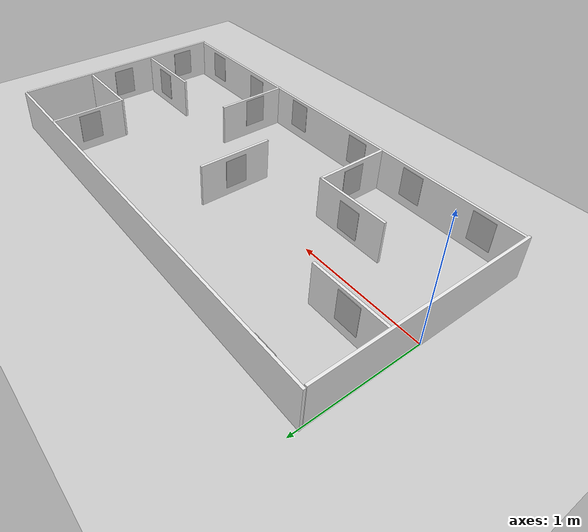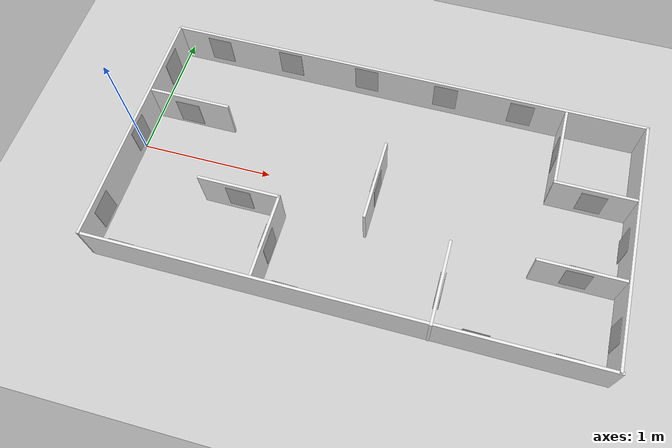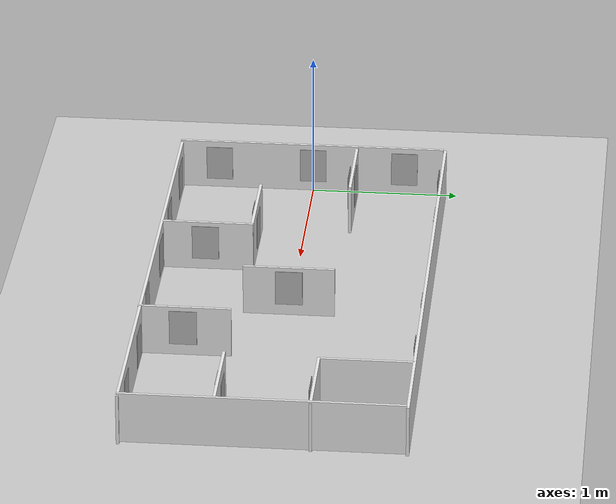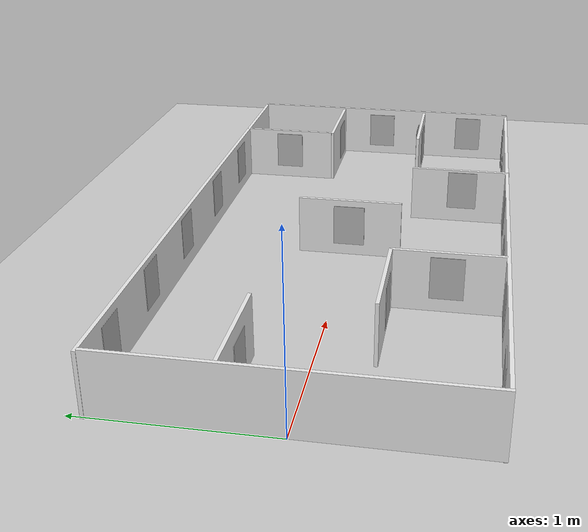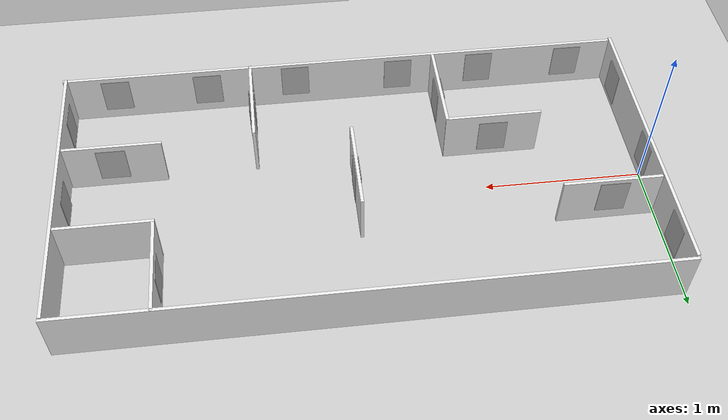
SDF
<sdf version="1.6">
 <world name="default">
  <light name="sun" type="directional">
   <pose>0 0 10 0 -0 0</pose>
   <diffuse>0.8 0.8 0.8 1</diffuse>
   <specular>0.2 0.2 0.2 1</specular>
   <attenuation>
    <range>1000</range>
    <constant>0.9</constant>
    <linear>0.01</linear>
    <quadratic>0.001</quadratic>
   </attenuation>
   <direction>-0.5 0.1 -0.9</direction>
  </light>
  <model name="ground_plane">
   <static>1</static>
   <link name="link">
    <collision name="collision">
     <geometry><plane><normal>0 0 1</normal><size>100 100</size></plane></geometry>
     <surface><friction><ode><mu>100</mu><mu2>50</mu2></ode></friction></surface>
    </collision>
    <visual name="visual">
     <cast_shadows>0</cast_shadows>
     <geometry><plane><normal>0 0 1</normal><size>100 100</size></plane></geometry>
     <material>
      <script><uri>file://media/materials/scripts/gazebo.material</uri><name>Gazebo/Grey</name></script>
     </material>
    </visual>
   </link>
  </model>
  <physics name="default_physics" default="0" type="ode">
   <real_time_update_rate>1000</real_time_update_rate>
   <max_step_size>0.001</max_step_size>
   <real_time_factor>1</real_time_factor>
   <ode>
    <solver>
     <type>quick</type>
     <iters>150</iters>
     <precon_iters>0</precon_iters>
     <sor>1.4</sor>
     <use_dynamic_moi_rescaling>1</use_dynamic_moi_rescaling>
    </solver>
    <constraints>
     <cfm>1e-05</cfm>
     <erp>0.2</erp>
     <contact_max_correcting_vel>2000</contact_max_correcting_vel>
     <contact_surface_layer>0.01</contact_surface_layer>
    </constraints>
   </ode>
  </physics>
  <gravity>0 0 -9.8</gravity>
  <magnetic_field>6e-06 2.3e-05 -4.2e-05</magnetic_field>
  <atmosphere type="adiabatic"/>
  <scene><ambient>0.4 0.4 0.4 1</ambient><background>0.7 0.7 0.7 1</background><shadows>1</shadows></scene>
  <spherical_coordinates>
   <surface_model>EARTH_WGS84</surface_model>
   <latitude_deg>0</latitude_deg>
   <longitude_deg>0</longitude_deg>
   <elevation>0</elevation>
   <heading_deg>0</heading_deg>
  </spherical_coordinates>
  <model name="sign_right1">
   <static>1</static>
   <link name="link">
    <pose>0 0 1.4 0 -0 0</pose>
    <visual name="visual">
     <cast_shadows>0</cast_shadows>
     <geometry><box><size>0.003668 0.181404 0.2404</size></box></geometry>
     <material>
      <script>
       <uri>model://sign_right1/materials/scripts</uri>
       <uri>model://sign_right1/materials/textures</uri>
       <name>right1</name>
      </script>
     </material>
    </visual>
   </link>
   <pose>0.298208 0.274612 -1.21562 0 -0 1.57</pose>
  </model>
  <model name="sign_left2_0">
   <static>1</static>
   <link name="link">
    <pose>0 0 1.4 0 -0 0</pose>
    <visual name="visual">
     <cast_shadows>0</cast_shadows>
     <geometry><box><size>0.003668 0.181404 0.2404</size></box></geometry>
     <material>
      <script>
       <uri>model://sign_left2/materials/scripts</uri>
       <uri>model://sign_left2/materials/textures</uri>
       <name>left2</name>
      </script>
     </material>
    </visual>
   </link>
   <pose>2.42433 -0.639391 -1.18903 0 -0 0</pose>
  </model>
  <model name="sign_target">
   <static>1</static>
   <link name="link">
    <pose>0 0 1.4 0 -0 0</pose>
    <visual name="visual">
     <cast_shadows>0</cast_shadows>
     <geometry><box><size>0.003668 0.181404 0.2404</size></box></geometry>
     <material>
      <script>
       <uri>model://sign_target/materials/scripts</uri>
       <uri>model://sign_target/materials/textures</uri>
       <name>target</name>
      </script>
     </material>
    </visual>
   </link>
   <pose>3.6084 -0.639481 -1.19831 0 -0 0</pose>
  </model>
  <model name="sign_left3_0_clone">
   <static>1</static>
   <link name="link">
    <pose>0 0 1.4 0 -0 0</pose>
    <visual name="visual">
     <cast_shadows>0</cast_shadows>
     <geometry><box><size>0.003668 0.181404 0.2404</size></box></geometry>
     <material>
      <script>
       <uri>model://sign_left3/materials/scripts</uri>
       <uri>model://sign_left3/materials/textures</uri>
       <name>left3</name>
      </script>
     </material>
    </visual>
   </link>
   <pose>1.81149 0.003008 -1.21134 0 -0 0</pose>
  </model>
  <model name="sign_left2_1">
   <static>1</static>
   <link name="link">
    <pose>0 0 1.4 0 -0 0</pose>
    <visual name="visual">
     <cast_shadows>0</cast_shadows>
     <geometry><box><size>0.003668 0.181404 0.2404</size></box></geometry>
     <material>
      <script>
       <uri>model://sign_left2/materials/scripts</uri>
       <uri>model://sign_left2/materials/textures</uri>
       <name>left2</name>
      </script>
     </material>
    </visual>
   </link>
   <pose>0.919228 -0.292738 -1.2369 0 -0 1.55336</pose>
  </model>
  <light name="user_point_light_0" type="point">
   <pose>-3.4255 -0.058943 1 0 -0 0</pose>
   <diffuse>0.5 0.5 0.5 1</diffuse>
   <specular>0.1 0.1 0.1 1</specular>
   <attenuation>
    <range>20</range>
    <constant>0.5</constant>
    <linear>0.01</linear>
    <quadratic>0.001</quadratic>
   </attenuation>
   <cast_shadows>0</cast_shadows>
   <direction>0 0 -1</direction>
  </light>
  <audio><device>default</device></audio>
  <model name="sign_do_not_enter_0">
   <static>1</static>
   <link name="link">
    <pose>0 0 1.4 0 -0 0</pose>
    <visual name="visual">
     <cast_shadows>0</cast_shadows>
     <geometry><box><size>0.003668 0.181404 0.2404</size></box></geometry>
     <material>
      <script>
       <uri>model://sign_do_not_enter/materials/scripts</uri>
       <uri>model://sign_do_not_enter/materials/textures</uri>
       <name>do_not_enter</name>
      </script>
     </material>
    </visual>
   </link>
   <pose>0.014991 0 -1.2 0 -0 0</pose>
  </model>
  <model name="sign_stop">
   <static>1</static>
   <link name="link">
    <pose>0 0 1.4 0 -0 0</pose>
    <visual name="visual">
     <cast_shadows>0</cast_shadows>
     <geometry><box><size>0.003668 0.181404 0.2404</size></box></geometry>
     <material>
      <script>
       <uri>model://sign_stop/materials/scripts</uri>
       <uri>model://sign_stop/materials/textures</uri>
       <name>stop</name>
      </script>
     </material>
    </visual>
   </link>
   <pose>0.017951 0.636179 -1.2 0 -0 0</pose>
  </model>
  <model name="sign_left2">
   <static>1</static>
   <link name="link">
    <pose>0 0 1.4 0 -0 0</pose>
    <visual name="visual">
     <cast_shadows>0</cast_shadows>
     <geometry><box><size>0.003668 0.181404 0.2404</size></box></geometry>
     <material>
      <script>
       <uri>model://sign_left2/materials/scripts</uri>
       <uri>model://sign_left2/materials/textures</uri>
       <name>left2</name>
      </script>
     </material>
    </visual>
   </link>
   <pose>1.24192 -0.61953 -1.2 0 -0 0</pose>
  </model>
  <model name="sign_right1_0">
   <static>1</static>
   <link name="link">
    <pose>0 0 1.4 0 -0 0</pose>
    <visual name="visual">
     <cast_shadows>0</cast_shadows>
     <geometry><box><size>0.003668 0.181404 0.2404</size></box></geometry>
     <material>
      <script>
       <uri>model://sign_right1/materials/scripts</uri>
       <uri>model://sign_right1/materials/textures</uri>
       <name>right1</name>
      </script>
     </material>
    </visual>
   </link>
   <pose>1.84698 0.000934 -1.2 0 -0 0</pose>
  </model>
  <model name="sign_do_not_enter_1">
   <static>1</static>
   <link name="link">
    <pose>0 0 1.4 0 -0 0</pose>
    <visual name="visual">
     <cast_shadows>0</cast_shadows>
     <geometry><box><size>0.003668 0.181404 0.2404</size></box></geometry>
     <material>
      <script>
       <uri>model://sign_do_not_enter/materials/scripts</uri>
       <uri>model://sign_do_not_enter/materials/textures</uri>
       <name>do_not_enter</name>
      </script>
     </material>
    </visual>
   </link>
   <pose>2.4586 -0.633708 -1.2 0 -0 0</pose>
  </model>
  <model name="sign_right2">
   <static>1</static>
   <link name="link">
    <pose>0 0 1.4 0 -0 0</pose>
    <visual name="visual">
     <cast_shadows>0</cast_shadows>
     <geometry><box><size>0.003668 0.181404 0.2404</size></box></geometry>
     <material>
      <script>
       <uri>model://sign_right2/materials/scripts</uri>
       <uri>model://sign_right2/materials/textures</uri>
       <name>right2</name>
      </script>
     </material>
    </visual>
   </link>
   <pose>0.029393 -0.65087 -1.2 0 -0 0</pose>
  </model>
  <model name="sign_right1_1">
   <static>1</static>
   <link name="link">
    <pose>0 0 1.4 0 -0 0</pose>
    <visual name="visual">
     <cast_shadows>0</cast_shadows>
     <geometry><box><size>0.003668 0.181404 0.2404</size></box></geometry>
     <material>
      <script>
       <uri>model://sign_right1/materials/scripts</uri>
       <uri>model://sign_right1/materials/textures</uri>
       <name>right1</name>
      </script>
     </material>
    </visual>
   </link>
   <pose>1.19951 -0.605606 -1.2 0 -0 0</pose>
  </model>
  <model name="sign_right3">
   <static>1</static>
   <link name="link">
    <pose>0 0 1.4 0 -0 0</pose>
    <visual name="visual">
     <cast_shadows>0</cast_shadows>
     <geometry><box><size>0.003668 0.181404 0.2404</size></box></geometry>
     <material>
      <script>
       <uri>model://sign_right3/materials/scripts</uri>
       <uri>model://sign_right3/materials/textures</uri>
       <name>right3</name>
      </script>
     </material>
    </visual>
   </link>
   <pose>3.0323 0.613433 -1.2 0 -0 0</pose>
  </model>
  <model name="sign_left1">
   <static>1</static>
   <link name="link">
    <pose>0 0 1.4 0 -0 0</pose>
    <visual name="visual">
     <cast_shadows>0</cast_shadows>
     <geometry><box><size>0.003668 0.181404 0.2404</size></box></geometry>
     <material>
      <script>
       <uri>model://sign_left1/materials/scripts</uri>
       <uri>model://sign_left1/materials/textures</uri>
       <name>left1</name>
      </script>
     </material>
    </visual>
   </link>
   <pose>3.59571 0.007617 -1.2 0 -0 0</pose>
  </model>
  <model name="sign_right2_0">
   <static>1</static>
   <link name="link">
    <pose>0 0 1.4 0 -0 0</pose>
    <visual name="visual">
     <cast_shadows>0</cast_shadows>
     <geometry><box><size>0.003668 0.181404 0.2404</size></box></geometry>
     <material>
      <script>
       <uri>model://sign_right2/materials/scripts</uri>
       <uri>model://sign_right2/materials/textures</uri>
       <name>right2</name>
      </script>
     </material>
    </visual>
   </link>
   <pose>0.902059 -0.899561 -1.2 0 0 -1.58148</pose>
  </model>
  <model name="sign_left1_0">
   <static>1</static>
   <link name="link">
    <pose>0 0 1.4 0 -0 0</pose>
    <visual name="visual">
     <cast_shadows>0</cast_shadows>
     <geometry><box><size>0.003668 0.181404 0.2404</size></box></geometry>
     <material>
      <script>
       <uri>model://sign_left1/materials/scripts</uri>
       <uri>model://sign_left1/materials/textures</uri>
       <name>left1</name>
      </script>
     </material>
    </visual>
   </link>
   <pose>2.14464 -0.904127 -1.2 0 0 -1.58148</pose>
  </model>
  <model name="sign_left2_2">
   <static>1</static>
   <link name="link">
    <pose>0 0 1.4 0 -0 0</pose>
    <visual name="visual">
     <cast_shadows>0</cast_shadows>
     <geometry><box><size>0.003668 0.181404 0.2404</size></box></geometry>
     <material>
      <script>
       <uri>model://sign_left2/materials/scripts</uri>
       <uri>model://sign_left2/materials/textures</uri>
       <name>left2</name>
      </script>
     </material>
    </visual>
   </link>
   <pose>2.72793 -0.888106 -1.2 0 0 -1.58148</pose>
  </model>
  <model name="sign_left3">
   <static>1</static>
   <link name="link">
    <pose>0 0 1.4 0 -0 0</pose>
    <visual name="visual">
     <cast_shadows>0</cast_shadows>
     <geometry><box><size>0.003668 0.181404 0.2404</size></box></geometry>
     <material>
      <script>
       <uri>model://sign_left3/materials/scripts</uri>
       <uri>model://sign_left3/materials/textures</uri>
       <name>left3</name>
      </script>
     </material>
    </visual>
   </link>
   <pose>3.32782 -0.894592 -1.2 0 0 -1.58148</pose>
  </model>
  <model name="sign_right1_2">
   <static>1</static>
   <link name="link">
    <pose>0 0 1.4 0 -0 0</pose>
    <visual name="visual">
     <cast_shadows>0</cast_shadows>
     <geometry><box><size>0.003668 0.181404 0.2404</size></box></geometry>
     <material>
      <script>
       <uri>model://sign_right1/materials/scripts</uri>
       <uri>model://sign_right1/materials/textures</uri>
       <name>right1</name>
      </script>
     </material>
    </visual>
   </link>
   <pose>3.32829 -0.281957 -1.2 0 0 -1.58148</pose>
  </model>
  <model name="sign_left3_1">
   <static>1</static>
   <link name="link">
    <pose>0 0 1.4 0 -0 0</pose>
    <visual name="visual">
     <cast_shadows>0</cast_shadows>
     <geometry><box><size>0.003668 0.181404 0.2404</size></box></geometry>
     <material>
      <script>
       <uri>model://sign_left3/materials/scripts</uri>
       <uri>model://sign_left3/materials/textures</uri>
       <name>left3</name>
      </script>
     </material>
    </visual>
   </link>
   <pose>1.45296 -0.894099 -1.2 0 0 -1.58148</pose>
  </model>
  <model name="sign_do_not_enter_2">
   <static>1</static>
   <link name="link">
    <pose>0 0 1.4 0 -0 0</pose>
    <visual name="visual">
     <cast_shadows>0</cast_shadows>
     <geometry><box><size>0.003668 0.181404 0.2404</size></box></geometry>
     <material>
      <script>
       <uri>model://sign_do_not_enter/materials/scripts</uri>
       <uri>model://sign_do_not_enter/materials/textures</uri>
       <name>do_not_enter</name>
      </script>
     </material>
    </visual>
   </link>
   <pose>0.295552 -0.894623 -1.2 0 0 -1.58148</pose>
  </model>
  <model name="sign_left3_2">
   <static>1</static>
   <link name="link">
    <pose>0 0 1.4 0 -0 0</pose>
    <visual name="visual">
     <cast_shadows>0</cast_shadows>
     <geometry><box><size>0.003668 0.181404 0.2404</size></box></geometry>
     <material>
      <script>
       <uri>model://sign_left3/materials/scripts</uri>
       <uri>model://sign_left3/materials/textures</uri>
       <name>left3</name>
      </script>
     </material>
    </visual>
   </link>
   <pose>0.300716 0.31857 -1.2 0 0 -1.58148</pose>
  </model>
  <model name="sign_right1_3">
   <static>1</static>
   <link name="link">
    <pose>0 0 1.4 0 -0 0</pose>
    <visual name="visual">
     <cast_shadows>0</cast_shadows>
     <geometry><box><size>0.003668 0.181404 0.2404</size></box></geometry>
     <material>
      <script>
       <uri>model://sign_right1/materials/scripts</uri>
       <uri>model://sign_right1/materials/textures</uri>
       <name>right1</name>
      </script>
     </material>
    </visual>
   </link>
   <pose>0.903865 0.903135 -1.2 0 -0 1.57</pose>
  </model>
  <model name="sign_right2_1">
   <static>1</static>
   <link name="link">
    <pose>0 0 1.4 0 -0 0</pose>
    <visual name="visual">
     <cast_shadows>0</cast_shadows>
     <geometry><box><size>0.003668 0.181404 0.2404</size></box></geometry>
     <material>
      <script>
       <uri>model://sign_right2/materials/scripts</uri>
       <uri>model://sign_right2/materials/textures</uri>
       <name>right2</name>
      </script>
     </material>
    </visual>
   </link>
   <pose>1.51809 0.90683 -1.2 0 -0 1.57</pose>
  </model>
  <model name="sign_right3_0">
   <static>1</static>
   <link name="link">
    <pose>0 0 1.4 0 -0 0</pose>
    <visual name="visual">
     <cast_shadows>0</cast_shadows>
     <geometry><box><size>0.003668 0.181404 0.2404</size></box></geometry>
     <material>
      <script>
       <uri>model://sign_right3/materials/scripts</uri>
       <uri>model://sign_right3/materials/textures</uri>
       <name>right3</name>
      </script>
     </material>
    </visual>
   </link>
   <pose>2.14189 0.901476 -1.2 0 -0 1.57</pose>
  </model>
  <model name="sign_do_not_enter_3">
   <static>1</static>
   <link name="link">
    <pose>0 0 1.4 0 -0 0</pose>
    <visual name="visual">
     <cast_shadows>0</cast_shadows>
     <geometry><box><size>0.003668 0.181404 0.2404</size></box></geometry>
     <material>
      <script>
       <uri>model://sign_do_not_enter/materials/scripts</uri>
       <uri>model://sign_do_not_enter/materials/textures</uri>
       <name>do_not_enter</name>
      </script>
     </material>
    </visual>
   </link>
   <pose>2.72711 0.896709 -1.2 0 -0 1.57</pose>
  </model>
  <model name="sign_right2_3">
   <static>1</static>
   <link name="link">
    <pose>0 0 1.4 0 -0 0</pose>
    <visual name="visual">
     <cast_shadows>0</cast_shadows>
     <geometry><box><size>0.003668 0.181404 0.2404</size></box></geometry>
     <material>
      <script>
       <uri>model://sign_right2/materials/scripts</uri>
       <uri>model://sign_right2/materials/textures</uri>
       <name>right2</name>
      </script>
     </material>
    </visual>
   </link>
   <pose>3.3118 -0.321314 -1.2 0 -0 1.57</pose>
  </model>
  <model name="sign_left1_1">
   <static>1</static>
   <link name="link">
    <pose>0 0 1.4 0 -0 0</pose>
    <visual name="visual">
     <cast_shadows>0</cast_shadows>
     <geometry><box><size>0.003668 0.181404 0.2404</size></box></geometry>
     <material>
      <script>
       <uri>model://sign_left1/materials/scripts</uri>
       <uri>model://sign_left1/materials/textures</uri>
       <name>left1</name>
      </script>
     </material>
    </visual>
   </link>
   <pose>3.33719 0.27785 -1.2 0 -0 1.57</pose>
  </model>
  <model name="6ft_white_wall">
   <link name="link_0">
    <inertial>
     <mass>0.0175997</mass>
     <inertia>
      <ixx>0.00164239</ixx>
      <ixy>0</ixy>
      <ixz>0</ixz>
      <iyy>0.00017954</iyy>
      <iyz>0</iyz>
      <izz>0.00147044</izz>
     </inertia>
    </inertial>
    <visual name="visual">
     <geometry><box><size>0.02 1.8288 0.346159</size></box></geometry>
     <material>
      <lighting>1</lighting>
      <script><uri>file://media/materials/scripts/gazebo.material</uri><name>Gazebo/White</name></script>
      <ambient>1 1 1 1</ambient>
      <diffuse>1 1 1 1</diffuse>
      <specular>0.01 0.01 0.01 1</specular>
      <emissive>0 0 0 1</emissive>
      <shader type="vertex"><normal_map>__default__</normal_map></shader>
     </material>
    </visual>
    <collision name="collision">
     <geometry><box><size>0.050867 1.8288 0.346159</size></box></geometry>
     <surface>
      <friction>
       <ode><mu>1</mu><mu2>1</mu2><fdir1>0 0 0</fdir1><slip1>0</slip1><slip2>0</slip2></ode>
       <torsional>
        <coefficient>1</coefficient>
        <patch_radius>0</patch_radius>
        <surface_radius>0</surface_radius>
        <use_patch_radius>1</use_patch_radius>
        <ode><slip>0</slip></ode>
       </torsional>
      </friction>
      <bounce><restitution_coefficient>0</restitution_coefficient><threshold>1e+06</threshold></bounce>
      <contact>
       <collide_without_contact>0</collide_without_contact>
       <collide_without_contact_bitmask>1</collide_without_contact_bitmask>
       <collide_bitmask>1</collide_bitmask>
       <ode>
        <soft_cfm>0</soft_cfm>
        <soft_erp>0.2</soft_erp>
        <kp>1e+13</kp>
        <kd>1</kd>
        <max_vel>0.01</max_vel>
        <min_depth>0</min_depth>
       </ode>
       <bullet>
        <split_impulse>1</split_impulse>
        <split_impulse_penetration_threshold>-0.01</split_impulse_penetration_threshold>
        <soft_cfm>0</soft_cfm>
        <soft_erp>0.2</soft_erp>
        <kp>1e+13</kp>
        <kd>1</kd>
       </bullet>
      </contact>
     </surface>
    </collision>
   </link>
   <static>1</static>
   <pose>0 -0.009509 0.182455 0 -0 0</pose>
  </model>
  <model name="12ft_white_wall_0">
   <link name="link_0">
    <inertial>
     <mass>0.0175997</mass>
     <inertia>
      <ixx>0.00164239</ixx>
      <ixy>0</ixy>
      <ixz>0</ixz>
      <iyy>0.00017954</iyy>
      <iyz>0</iyz>
      <izz>0.00147044</izz>
     </inertia>
    </inertial>
    <visual name="visual">
     <geometry><box><size>0.02 3.6576 0.346159</size></box></geometry>
     <material>
      <lighting>1</lighting>
      <script><uri>file://media/materials/scripts/gazebo.material</uri><name>Gazebo/White</name></script>
      <ambient>1 1 1 1</ambient>
      <diffuse>1 1 1 1</diffuse>
      <specular>0.01 0.01 0.01 1</specular>
      <emissive>0 0 0 1</emissive>
      <shader type="vertex"><normal_map>__default__</normal_map></shader>
     </material>
    </visual>
    <collision name="collision">
     <geometry><box><size>0.050867 3.6576 0.346159</size></box></geometry>
     <surface>
      <friction>
       <ode><mu>1</mu><mu2>1</mu2><fdir1>0 0 0</fdir1><slip1>0</slip1><slip2>0</slip2></ode>
       <torsional>
        <coefficient>1</coefficient>
        <patch_radius>0</patch_radius>
        <surface_radius>0</surface_radius>
        <use_patch_radius>1</use_patch_radius>
        <ode><slip>0</slip></ode>
       </torsional>
      </friction>
      <bounce><restitution_coefficient>0</restitution_coefficient><threshold>1e+06</threshold></bounce>
      <contact>
       <collide_without_contact>0</collide_without_contact>
       <collide_without_contact_bitmask>1</collide_without_contact_bitmask>
       <collide_bitmask>1</collide_bitmask>
       <ode>
        <soft_cfm>0</soft_cfm>
        <soft_erp>0.2</soft_erp>
        <kp>1e+13</kp>
        <kd>1</kd>
        <max_vel>0.01</max_vel>
        <min_depth>0</min_depth>
       </ode>
       <bullet>
        <split_impulse>1</split_impulse>
        <split_impulse_penetration_threshold>-0.01</split_impulse_penetration_threshold>
        <soft_cfm>0</soft_cfm>
        <soft_erp>0.2</soft_erp>
        <kp>1e+13</kp>
        <kd>1</kd>
       </bullet>
      </contact>
     </surface>
    </collision>
   </link>
   <static>1</static>
   <pose>1.8213 0.917001 0.172001 0 -0 1.5708</pose>
  </model>
  <model name="2ft_white_wall">
   <link name="link_0">
    <inertial>
     <mass>0.0175997</mass>
     <inertia>
      <ixx>0.00164239</ixx>
      <ixy>0</ixy>
      <ixz>0</ixz>
      <iyy>0.00017954</iyy>
      <iyz>0</iyz>
      <izz>0.00147044</izz>
     </inertia>
    </inertial>
    <visual name="visual">
     <geometry><box><size>0.02 0.6096 0.346159</size></box></geometry>
     <material>
      <lighting>1</lighting>
      <script><uri>file://media/materials/scripts/gazebo.material</uri><name>Gazebo/White</name></script>
      <ambient>1 1 1 1</ambient>
      <diffuse>1 1 1 1</diffuse>
      <specular>0.01 0.01 0.01 1</specular>
      <emissive>0 0 0 1</emissive>
      <shader type="vertex"><normal_map>__default__</normal_map></shader>
     </material>
    </visual>
    <collision name="collision">
     <geometry><box><size>0.02 0.6096 0.346159</size></box></geometry>
     <surface>
      <friction>
       <ode><mu>1</mu><mu2>1</mu2><fdir1>0 0 0</fdir1><slip1>0</slip1><slip2>0</slip2></ode>
       <torsional>
        <coefficient>1</coefficient>
        <patch_radius>0</patch_radius>
        <surface_radius>0</surface_radius>
        <use_patch_radius>1</use_patch_radius>
        <ode><slip>0</slip></ode>
       </torsional>
      </friction>
      <bounce><restitution_coefficient>0</restitution_coefficient><threshold>1e+06</threshold></bounce>
      <contact>
       <collide_without_contact>0</collide_without_contact>
       <collide_without_contact_bitmask>1</collide_without_contact_bitmask>
       <collide_bitmask>1</collide_bitmask>
       <ode>
        <soft_cfm>0</soft_cfm>
        <soft_erp>0.2</soft_erp>
        <kp>1e+13</kp>
        <kd>1</kd>
        <max_vel>0.01</max_vel>
        <min_depth>0</min_depth>
       </ode>
       <bullet>
        <split_impulse>1</split_impulse>
        <split_impulse_penetration_threshold>-0.01</split_impulse_penetration_threshold>
        <soft_cfm>0</soft_cfm>
        <soft_erp>0.2</soft_erp>
        <kp>1e+13</kp>
        <kd>1</kd>
       </bullet>
      </contact>
     </surface>
    </collision>
   </link>
   <static>1</static>
   <pose>2.4384 -0.623872 0.172001 0 -0 0</pose>
  </model>
  <model name="6ft_white_wall_clone">
   <link name="link_0">
    <inertial>
     <mass>0.0175997</mass>
     <inertia>
      <ixx>0.00164239</ixx>
      <ixy>0</ixy>
      <ixz>0</ixz>
      <iyy>0.00017954</iyy>
      <iyz>0</iyz>
      <izz>0.00147044</izz>
     </inertia>
    </inertial>
    <visual name="visual">
     <geometry><box><size>0.02 1.8288 0.346159</size></box></geometry>
     <material>
      <lighting>1</lighting>
      <script><uri>file://media/materials/scripts/gazebo.material</uri><name>Gazebo/White</name></script>
      <ambient>1 1 1 1</ambient>
      <diffuse>1 1 1 1</diffuse>
      <specular>0.01 0.01 0.01 1</specular>
      <emissive>0 0 0 1</emissive>
      <shader type="vertex"><normal_map>__default__</normal_map></shader>
     </material>
    </visual>
    <collision name="collision">
     <geometry><box><size>0.050867 1.8288 0.346159</size></box></geometry>
     <surface>
      <friction>
       <ode><mu>1</mu><mu2>1</mu2><fdir1>0 0 0</fdir1><slip1>0</slip1><slip2>0</slip2></ode>
       <torsional>
        <coefficient>1</coefficient>
        <patch_radius>0</patch_radius>
        <surface_radius>0</surface_radius>
        <use_patch_radius>1</use_patch_radius>
        <ode><slip>0</slip></ode>
       </torsional>
      </friction>
      <bounce><restitution_coefficient>0</restitution_coefficient><threshold>1e+06</threshold></bounce>
      <contact>
       <collide_without_contact>0</collide_without_contact>
       <collide_without_contact_bitmask>1</collide_without_contact_bitmask>
       <collide_bitmask>1</collide_bitmask>
       <ode>
        <soft_cfm>0</soft_cfm>
        <soft_erp>0.2</soft_erp>
        <kp>1e+13</kp>
        <kd>1</kd>
        <max_vel>0.01</max_vel>
        <min_depth>0</min_depth>
       </ode>
       <bullet>
        <split_impulse>1</split_impulse>
        <split_impulse_penetration_threshold>-0.01</split_impulse_penetration_threshold>
        <soft_cfm>0</soft_cfm>
        <soft_erp>0.2</soft_erp>
        <kp>1e+13</kp>
        <kd>1</kd>
       </bullet>
      </contact>
     </surface>
    </collision>
   </link>
   <static>1</static>
   <pose>3.63512 -0.003611 0.182455 0 -0 0</pose>
  </model>
  <model name="12ft_white_wall_0_clone">
   <link name="link_0">
    <inertial>
     <mass>0.0175997</mass>
     <inertia>
      <ixx>0.00164239</ixx>
      <ixy>0</ixy>
      <ixz>0</ixz>
      <iyy>0.00017954</iyy>
      <iyz>0</iyz>
      <izz>0.00147044</izz>
     </inertia>
    </inertial>
    <visual name="visual">
     <geometry><box><size>0.02 3.6576 0.346159</size></box></geometry>
     <material>
      <lighting>1</lighting>
      <script><uri>file://media/materials/scripts/gazebo.material</uri><name>Gazebo/White</name></script>
      <ambient>1 1 1 1</ambient>
      <diffuse>1 1 1 1</diffuse>
      <specular>0.01 0.01 0.01 1</specular>
      <emissive>0 0 0 1</emissive>
      <shader type="vertex"><normal_map>__default__</normal_map></shader>
     </material>
    </visual>
    <collision name="collision">
     <geometry><box><size>0.050867 3.6576 0.346159</size></box></geometry>
     <surface>
      <friction>
       <ode><mu>1</mu><mu2>1</mu2><fdir1>0 0 0</fdir1><slip1>0</slip1><slip2>0</slip2></ode>
       <torsional>
        <coefficient>1</coefficient>
        <patch_radius>0</patch_radius>
        <surface_radius>0</surface_radius>
        <use_patch_radius>1</use_patch_radius>
        <ode><slip>0</slip></ode>
       </torsional>
      </friction>
      <bounce><restitution_coefficient>0</restitution_coefficient><threshold>1e+06</threshold></bounce>
      <contact>
       <collide_without_contact>0</collide_without_contact>
       <collide_without_contact_bitmask>1</collide_without_contact_bitmask>
       <collide_bitmask>1</collide_bitmask>
       <ode>
        <soft_cfm>0</soft_cfm>
        <soft_erp>0.2</soft_erp>
        <kp>1e+13</kp>
        <kd>1</kd>
        <max_vel>0.01</max_vel>
        <min_depth>0</min_depth>
       </ode>
       <bullet>
        <split_impulse>1</split_impulse>
        <split_impulse_penetration_threshold>-0.01</split_impulse_penetration_threshold>
        <soft_cfm>0</soft_cfm>
        <soft_erp>0.2</soft_erp>
        <kp>1e+13</kp>
        <kd>1</kd>
       </bullet>
      </contact>
     </surface>
    </collision>
   </link>
   <static>1</static>
   <pose>1.8288 -0.9144 0.172001 0 -0 1.5708</pose>
  </model>
  <model name="2ft_white_wall_clone">
   <link name="link_0">
    <inertial>
     <mass>0.0175997</mass>
     <inertia>
      <ixx>0.00164239</ixx>
      <ixy>0</ixy>
      <ixz>0</ixz>
      <iyy>0.00017954</iyy>
      <iyz>0</iyz>
      <izz>0.00147044</izz>
     </inertia>
    </inertial>
    <visual name="visual">
     <geometry><box><size>0.02 0.6096 0.346159</size></box></geometry>
     <material>
      <lighting>1</lighting>
      <script><uri>file://media/materials/scripts/gazebo.material</uri><name>Gazebo/White</name></script>
      <ambient>1 1 1 1</ambient>
      <diffuse>1 1 1 1</diffuse>
      <specular>0.01 0.01 0.01 1</specular>
      <emissive>0 0 0 1</emissive>
      <shader type="vertex"><normal_map>__default__</normal_map></shader>
     </material>
    </visual>
    <collision name="collision">
     <geometry><box><size>0.02 0.6096 0.346159</size></box></geometry>
     <surface>
      <friction>
       <ode><mu>1</mu><mu2>1</mu2><fdir1>0 0 0</fdir1><slip1>0</slip1><slip2>0</slip2></ode>
       <torsional>
        <coefficient>1</coefficient>
        <patch_radius>0</patch_radius>
        <surface_radius>0</surface_radius>
        <use_patch_radius>1</use_patch_radius>
        <ode><slip>0</slip></ode>
       </torsional>
      </friction>
      <bounce><restitution_coefficient>0</restitution_coefficient><threshold>1e+06</threshold></bounce>
      <contact>
       <collide_without_contact>0</collide_without_contact>
       <collide_without_contact_bitmask>1</collide_without_contact_bitmask>
       <collide_bitmask>1</collide_bitmask>
       <ode>
        <soft_cfm>0</soft_cfm>
        <soft_erp>0.2</soft_erp>
        <kp>1e+13</kp>
        <kd>1</kd>
        <max_vel>0.01</max_vel>
        <min_depth>0</min_depth>
       </ode>
       <bullet>
        <split_impulse>1</split_impulse>
        <split_impulse_penetration_threshold>-0.01</split_impulse_penetration_threshold>
        <soft_cfm>0</soft_cfm>
        <soft_erp>0.2</soft_erp>
        <kp>1e+13</kp>
        <kd>1</kd>
       </bullet>
      </contact>
     </surface>
    </collision>
   </link>
   <static>1</static>
   <pose>3.3159 -0.3048 0.172001 0 -0 1.5708</pose>
  </model>
  <model name="2ft_white_wall_clone_0">
   <link name="link_0">
    <inertial>
     <mass>0.0175997</mass>
     <inertia>
      <ixx>0.00164239</ixx>
      <ixy>0</ixy>
      <ixz>0</ixz>
      <iyy>0.00017954</iyy>
      <iyz>0</iyz>
      <izz>0.00147044</izz>
     </inertia>
    </inertial>
    <visual name="visual">
     <geometry><box><size>0.02 0.6096 0.346159</size></box></geometry>
     <material>
      <lighting>1</lighting>
      <script><uri>file://media/materials/scripts/gazebo.material</uri><name>Gazebo/White</name></script>
      <ambient>1 1 1 1</ambient>
      <diffuse>1 1 1 1</diffuse>
      <specular>0.01 0.01 0.01 1</specular>
      <emissive>0 0 0 1</emissive>
      <shader type="vertex"><normal_map>__default__</normal_map></shader>
     </material>
    </visual>
    <collision name="collision">
     <geometry><box><size>0.02 0.6096 0.346159</size></box></geometry>
     <surface>
      <friction>
       <ode><mu>1</mu><mu2>1</mu2><fdir1>0 0 0</fdir1><slip1>0</slip1><slip2>0</slip2></ode>
       <torsional>
        <coefficient>1</coefficient>
        <patch_radius>0</patch_radius>
        <surface_radius>0</surface_radius>
        <use_patch_radius>1</use_patch_radius>
        <ode><slip>0</slip></ode>
       </torsional>
      </friction>
      <bounce><restitution_coefficient>0</restitution_coefficient><threshold>1e+06</threshold></bounce>
      <contact>
       <collide_without_contact>0</collide_without_contact>
       <collide_without_contact_bitmask>1</collide_without_contact_bitmask>
       <collide_bitmask>1</collide_bitmask>
       <ode>
        <soft_cfm>0</soft_cfm>
        <soft_erp>0.2</soft_erp>
        <kp>1e+13</kp>
        <kd>1</kd>
        <max_vel>0.01</max_vel>
        <min_depth>0</min_depth>
       </ode>
       <bullet>
        <split_impulse>1</split_impulse>
        <split_impulse_penetration_threshold>-0.01</split_impulse_penetration_threshold>
        <soft_cfm>0</soft_cfm>
        <soft_erp>0.2</soft_erp>
        <kp>1e+13</kp>
        <kd>1</kd>
       </bullet>
      </contact>
     </surface>
    </collision>
   </link>
   <static>1</static>
   <pose>1.8288 0 0.172001 0 -0 0</pose>
  </model>
  <model name="2ft_white_wall_clone_1">
   <link name="link_0">
    <inertial>
     <mass>0.0175997</mass>
     <inertia>
      <ixx>0.00164239</ixx>
      <ixy>0</ixy>
      <ixz>0</ixz>
      <iyy>0.00017954</iyy>
      <iyz>0</iyz>
      <izz>0.00147044</izz>
     </inertia>
    </inertial>
    <visual name="visual">
     <geometry><box><size>0.02 0.6096 0.346159</size></box></geometry>
     <material>
      <lighting>1</lighting>
      <script><uri>file://media/materials/scripts/gazebo.material</uri><name>Gazebo/White</name></script>
      <ambient>1 1 1 1</ambient>
      <diffuse>1 1 1 1</diffuse>
      <specular>0.01 0.01 0.01 1</specular>
      <emissive>0 0 0 1</emissive>
      <shader type="vertex"><normal_map>__default__</normal_map></shader>
     </material>
    </visual>
    <collision name="collision">
     <geometry><box><size>0.02 0.6096 0.346159</size></box></geometry>
     <surface>
      <friction>
       <ode><mu>1</mu><mu2>1</mu2><fdir1>0 0 0</fdir1><slip1>0</slip1><slip2>0</slip2></ode>
       <torsional>
        <coefficient>1</coefficient>
        <patch_radius>0</patch_radius>
        <surface_radius>0</surface_radius>
        <use_patch_radius>1</use_patch_radius>
        <ode><slip>0</slip></ode>
       </torsional>
      </friction>
      <bounce><restitution_coefficient>0</restitution_coefficient><threshold>1e+06</threshold></bounce>
      <contact>
       <collide_without_contact>0</collide_without_contact>
       <collide_without_contact_bitmask>1</collide_without_contact_bitmask>
       <collide_bitmask>1</collide_bitmask>
       <ode>
        <soft_cfm>0</soft_cfm>
        <soft_erp>0.2</soft_erp>
        <kp>1e+13</kp>
        <kd>1</kd>
        <max_vel>0.01</max_vel>
        <min_depth>0</min_depth>
       </ode>
       <bullet>
        <split_impulse>1</split_impulse>
        <split_impulse_penetration_threshold>-0.01</split_impulse_penetration_threshold>
        <soft_cfm>0</soft_cfm>
        <soft_erp>0.2</soft_erp>
        <kp>1e+13</kp>
        <kd>1</kd>
       </bullet>
      </contact>
     </surface>
    </collision>
   </link>
   <static>1</static>
   <pose>1.2192 -0.603762 0.172001 0 -0 0</pose>
  </model>
  <model name="2ft_white_wall_clone_2">
   <link name="link_0">
    <inertial>
     <mass>0.0175997</mass>
     <inertia>
      <ixx>0.00164239</ixx>
      <ixy>0</ixy>
      <ixz>0</ixz>
      <iyy>0.00017954</iyy>
      <iyz>0</iyz>
      <izz>0.00147044</izz>
     </inertia>
    </inertial>
    <visual name="visual">
     <geometry><box><size>0.02 0.6096 0.346159</size></box></geometry>
     <material>
      <lighting>1</lighting>
      <script><uri>file://media/materials/scripts/gazebo.material</uri><name>Gazebo/White</name></script>
      <ambient>1 1 1 1</ambient>
      <diffuse>1 1 1 1</diffuse>
      <specular>0.01 0.01 0.01 1</specular>
      <emissive>0 0 0 1</emissive>
      <shader type="vertex"><normal_map>__default__</normal_map></shader>
     </material>
    </visual>
    <collision name="collision">
     <geometry><box><size>0.02 0.6096 0.346159</size></box></geometry>
     <surface>
      <friction>
       <ode><mu>1</mu><mu2>1</mu2><fdir1>0 0 0</fdir1><slip1>0</slip1><slip2>0</slip2></ode>
       <torsional>
        <coefficient>1</coefficient>
        <patch_radius>0</patch_radius>
        <surface_radius>0</surface_radius>
        <use_patch_radius>1</use_patch_radius>
        <ode><slip>0</slip></ode>
       </torsional>
      </friction>
      <bounce><restitution_coefficient>0</restitution_coefficient><threshold>1e+06</threshold></bounce>
      <contact>
       <collide_without_contact>0</collide_without_contact>
       <collide_without_contact_bitmask>1</collide_without_contact_bitmask>
       <collide_bitmask>1</collide_bitmask>
       <ode>
        <soft_cfm>0</soft_cfm>
        <soft_erp>0.2</soft_erp>
        <kp>1e+13</kp>
        <kd>1</kd>
        <max_vel>0.01</max_vel>
        <min_depth>0</min_depth>
       </ode>
       <bullet>
        <split_impulse>1</split_impulse>
        <split_impulse_penetration_threshold>-0.01</split_impulse_penetration_threshold>
        <soft_cfm>0</soft_cfm>
        <soft_erp>0.2</soft_erp>
        <kp>1e+13</kp>
        <kd>1</kd>
       </bullet>
      </contact>
     </surface>
    </collision>
   </link>
   <static>1</static>
   <pose>3.048 0.61726 0.172001 0 -0 0</pose>
  </model>
  <model name="2ft_white_wall_clone_clone">
   <link name="link_0">
    <inertial>
     <mass>0.0175997</mass>
     <inertia>
      <ixx>0.00164239</ixx>
      <ixy>0</ixy>
      <ixz>0</ixz>
      <iyy>0.00017954</iyy>
      <iyz>0</iyz>
      <izz>0.00147044</izz>
     </inertia>
    </inertial>
    <visual name="visual">
     <geometry><box><size>0.02 0.6096 0.346159</size></box></geometry>
     <material>
      <lighting>1</lighting>
      <script><uri>file://media/materials/scripts/gazebo.material</uri><name>Gazebo/White</name></script>
      <ambient>1 1 1 1</ambient>
      <diffuse>1 1 1 1</diffuse>
      <specular>0.01 0.01 0.01 1</specular>
      <emissive>0 0 0 1</emissive>
      <shader type="vertex"><normal_map>__default__</normal_map></shader>
     </material>
    </visual>
    <collision name="collision">
     <geometry><box><size>0.02 0.6096 0.346159</size></box></geometry>
     <surface>
      <friction>
       <ode><mu>1</mu><mu2>1</mu2><fdir1>0 0 0</fdir1><slip1>0</slip1><slip2>0</slip2></ode>
       <torsional>
        <coefficient>1</coefficient>
        <patch_radius>0</patch_radius>
        <surface_radius>0</surface_radius>
        <use_patch_radius>1</use_patch_radius>
        <ode><slip>0</slip></ode>
       </torsional>
      </friction>
      <bounce><restitution_coefficient>0</restitution_coefficient><threshold>1e+06</threshold></bounce>
      <contact>
       <collide_without_contact>0</collide_without_contact>
       <collide_without_contact_bitmask>1</collide_without_contact_bitmask>
       <collide_bitmask>1</collide_bitmask>
       <ode>
        <soft_cfm>0</soft_cfm>
        <soft_erp>0.2</soft_erp>
        <kp>1e+13</kp>
        <kd>1</kd>
        <max_vel>0.01</max_vel>
        <min_depth>0</min_depth>
       </ode>
       <bullet>
        <split_impulse>1</split_impulse>
        <split_impulse_penetration_threshold>-0.01</split_impulse_penetration_threshold>
        <soft_cfm>0</soft_cfm>
        <soft_erp>0.2</soft_erp>
        <kp>1e+13</kp>
        <kd>1</kd>
       </bullet>
      </contact>
     </surface>
    </collision>
   </link>
   <static>1</static>
   <pose>3.34367 0.3048 0.172001 0 -0 1.5708</pose>
  </model>
  <model name="2ft_white_wall_clone_clone_0">
   <link name="link_0">
    <inertial>
     <mass>0.0175997</mass>
     <inertia>
      <ixx>0.00164239</ixx>
      <ixy>0</ixy>
      <ixz>0</ixz>
      <iyy>0.00017954</iyy>
      <iyz>0</iyz>
      <izz>0.00147044</izz>
     </inertia>
    </inertial>
    <visual name="visual">
     <geometry><box><size>0.02 0.6096 0.346159</size></box></geometry>
     <material>
      <lighting>1</lighting>
      <script><uri>file://media/materials/scripts/gazebo.material</uri><name>Gazebo/White</name></script>
      <ambient>1 1 1 1</ambient>
      <diffuse>1 1 1 1</diffuse>
      <specular>0.01 0.01 0.01 1</specular>
      <emissive>0 0 0 1</emissive>
      <shader type="vertex"><normal_map>__default__</normal_map></shader>
     </material>
    </visual>
    <collision name="collision">
     <geometry><box><size>0.02 0.6096 0.346159</size></box></geometry>
     <surface>
      <friction>
       <ode><mu>1</mu><mu2>1</mu2><fdir1>0 0 0</fdir1><slip1>0</slip1><slip2>0</slip2></ode>
       <torsional>
        <coefficient>1</coefficient>
        <patch_radius>0</patch_radius>
        <surface_radius>0</surface_radius>
        <use_patch_radius>1</use_patch_radius>
        <ode><slip>0</slip></ode>
       </torsional>
      </friction>
      <bounce><restitution_coefficient>0</restitution_coefficient><threshold>1e+06</threshold></bounce>
      <contact>
       <collide_without_contact>0</collide_without_contact>
       <collide_without_contact_bitmask>1</collide_without_contact_bitmask>
       <collide_bitmask>1</collide_bitmask>
       <ode>
        <soft_cfm>0</soft_cfm>
        <soft_erp>0.2</soft_erp>
        <kp>1e+13</kp>
        <kd>1</kd>
        <max_vel>0.01</max_vel>
        <min_depth>0</min_depth>
       </ode>
       <bullet>
        <split_impulse>1</split_impulse>
        <split_impulse_penetration_threshold>-0.01</split_impulse_penetration_threshold>
        <soft_cfm>0</soft_cfm>
        <soft_erp>0.2</soft_erp>
        <kp>1e+13</kp>
        <kd>1</kd>
       </bullet>
      </contact>
     </surface>
    </collision>
   </link>
   <static>1</static>
   <pose>0.922926 -0.3048 0.172001 0 -0 1.5708</pose>
  </model>
  <model name="2ft_white_wall_clone_clone_1">
   <link name="link_0">
    <inertial>
     <mass>0.0175997</mass>
     <inertia>
      <ixx>0.00164239</ixx>
      <ixy>0</ixy>
      <ixz>0</ixz>
      <iyy>0.00017954</iyy>
      <iyz>0</iyz>
      <izz>0.00147044</izz>
     </inertia>
    </inertial>
    <visual name="visual">
     <geometry><box><size>0.02 0.6096 0.346159</size></box></geometry>
     <material>
      <lighting>1</lighting>
      <script><uri>file://media/materials/scripts/gazebo.material</uri><name>Gazebo/White</name></script>
      <ambient>1 1 1 1</ambient>
      <diffuse>1 1 1 1</diffuse>
      <specular>0.01 0.01 0.01 1</specular>
      <emissive>0 0 0 1</emissive>
      <shader type="vertex"><normal_map>__default__</normal_map></shader>
     </material>
    </visual>
    <collision name="collision">
     <geometry><box><size>0.02 0.6096 0.346159</size></box></geometry>
     <surface>
      <friction>
       <ode><mu>1</mu><mu2>1</mu2><fdir1>0 0 0</fdir1><slip1>0</slip1><slip2>0</slip2></ode>
       <torsional>
        <coefficient>1</coefficient>
        <patch_radius>0</patch_radius>
        <surface_radius>0</surface_radius>
        <use_patch_radius>1</use_patch_radius>
        <ode><slip>0</slip></ode>
       </torsional>
      </friction>
      <bounce><restitution_coefficient>0</restitution_coefficient><threshold>1e+06</threshold></bounce>
      <contact>
       <collide_without_contact>0</collide_without_contact>
       <collide_without_contact_bitmask>1</collide_without_contact_bitmask>
       <collide_bitmask>1</collide_bitmask>
       <ode>
        <soft_cfm>0</soft_cfm>
        <soft_erp>0.2</soft_erp>
        <kp>1e+13</kp>
        <kd>1</kd>
        <max_vel>0.01</max_vel>
        <min_depth>0</min_depth>
       </ode>
       <bullet>
        <split_impulse>1</split_impulse>
        <split_impulse_penetration_threshold>-0.01</split_impulse_penetration_threshold>
        <soft_cfm>0</soft_cfm>
        <soft_erp>0.2</soft_erp>
        <kp>1e+13</kp>
        <kd>1</kd>
       </bullet>
      </contact>
     </surface>
    </collision>
   </link>
   <static>1</static>
   <pose>0.315888 0.3048 0.172001 0 -0 1.5708</pose>
  </model>
  <model name="sign_right2_1_clone">
   <static>1</static>
   <link name="link">
    <pose>0 0 1.4 0 -0 0</pose>
    <visual name="visual">
     <cast_shadows>0</cast_shadows>
     <geometry><box><size>0.003668 0.181404 0.2404</size></box></geometry>
     <material>
      <script>
       <uri>model://sign_right2/materials/scripts</uri>
       <uri>model://sign_right2/materials/textures</uri>
       <name>right2</name>
      </script>
     </material>
    </visual>
   </link>
   <pose>0.325589 0.891728 -1.2 0 -0 1.57</pose>
  </model>
  <model name="sign_right2_1_clone_0">
   <static>1</static>
   <link name="link">
    <pose>0 0 1.4 0 -0 0</pose>
    <visual name="visual">
     <cast_shadows>0</cast_shadows>
     <geometry><box><size>0.003668 0.181404 0.2404</size></box></geometry>
     <material>
      <script>
       <uri>model://sign_right2/materials/scripts</uri>
       <uri>model://sign_right2/materials/textures</uri>
       <name>right2</name>
      </script>
     </material>
    </visual>
   </link>
   <pose>0.917199 -0.325382 -1.2 0 -0 1.57</pose>
  </model>
 </world>
</sdf>
